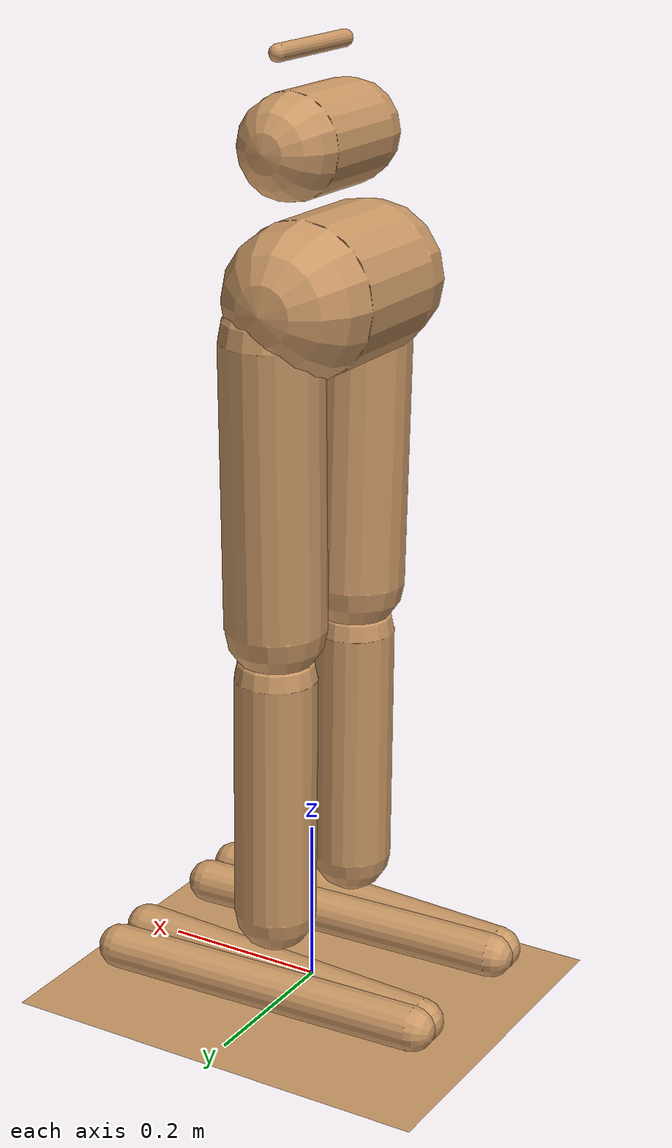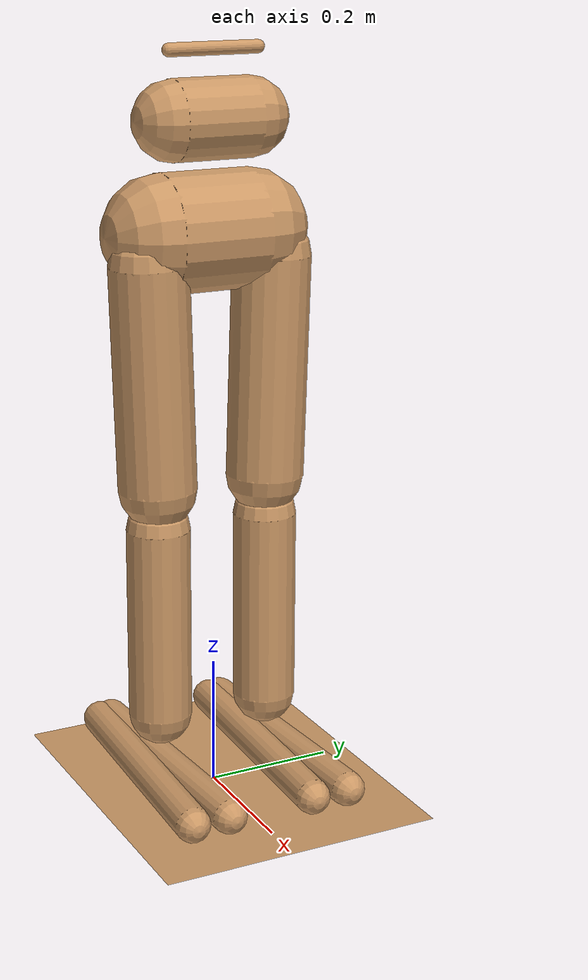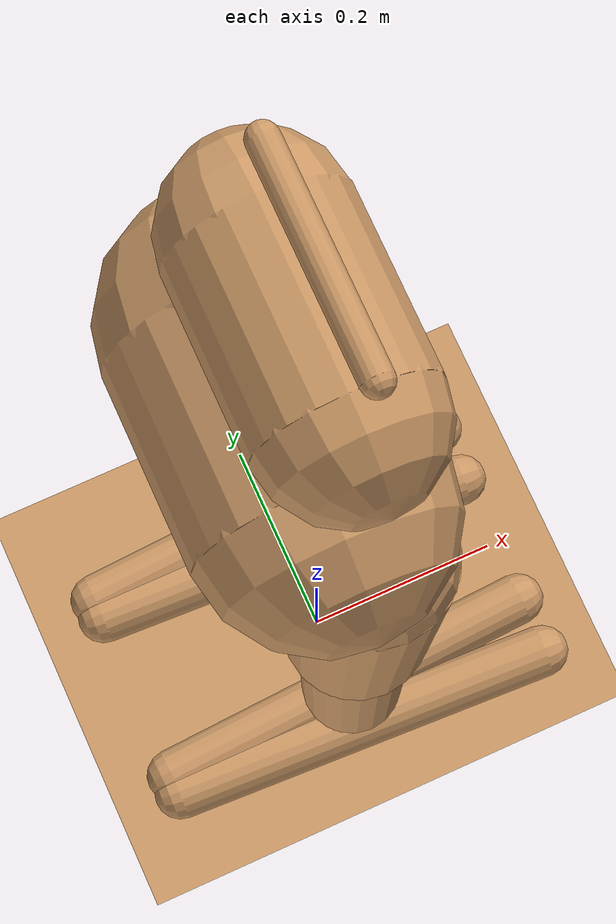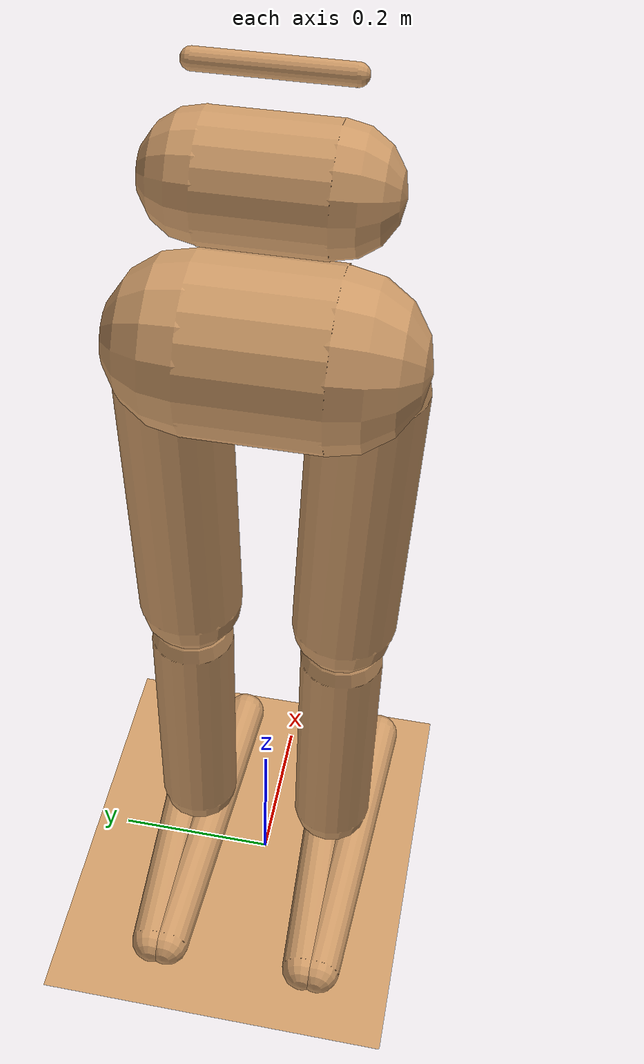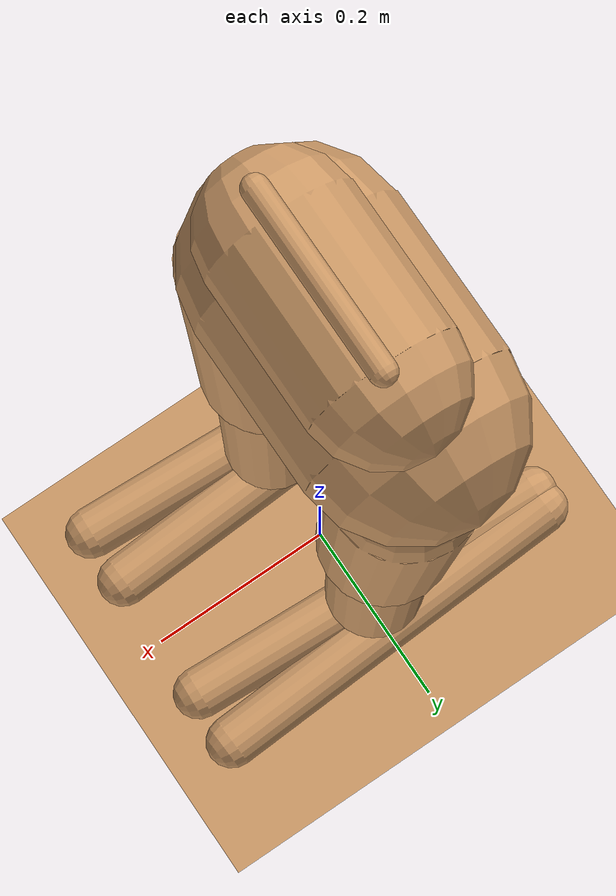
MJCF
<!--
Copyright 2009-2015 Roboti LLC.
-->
<mujoco model='humanoid (v1.31)'>
    <compiler inertiafromgeom='true' angle='degree'/>

    <default>
        <joint limited='true' damping='1' armature='0'  />
        <geom contype='1' conaffinity='1' condim='1' rgba='0.8 0.6 .4 1'
        	margin="0.001" solref=".02 1" solimp=".8 .8 .01" material="geom"/>
        <motor ctrlrange='-.4 .4' ctrllimited='true'/>
    </default>

    <option timestep='0.002' iterations="50" solver="PGS">
        <flag energy="enable"/>
    </option>

    <visual>
        <map fogstart="3" fogend="5" force="0.1"/>
        <quality shadowsize="2048"/>
    </visual>

    <asset>
        <texture type="skybox" builtin="gradient" width="100" height="100" rgb1=".4 .6 .8"
            rgb2="0 0 0"/>
        <texture name="texgeom" type="cube" builtin="flat" mark="cross" width="127" height="1278"
            rgb1="0.8 0.6 0.4" rgb2="0.8 0.6 0.4" markrgb="1 1 1" random="0.01"/>
        <texture name="texplane" type="2d" builtin="checker" rgb1=".2 .3 .4" rgb2=".1 0.15 0.2"
            width="100" height="100"/>

        <material name='MatPlane' reflectance='0.5' texture="texplane" texrepeat="1 1" texuniform="true"/>
        <material name='geom' texture="texgeom" texuniform="true"/>
    </asset>

    <worldbody>
        <geom name='floor' pos='0 0 0' size='10 10 0.125' type='plane' material="MatPlane" condim='3'/>

        <body name='torso' pos='0 0 1.14'>
            <light mode='trackcom' directional='false' diffuse='.8 .8 .8' specular='0.3 0.3 0.3' pos='0 0 4.0' dir='0 0 -1'/>

            <joint name='root' type='free' pos='0 0 0' limited='false' damping='0' armature='0' stiffness='0'/>
            <geom name='torso1' type='capsule' fromto='0 -.07 0 0 .07 0'  size='0.01' />
            <body name='lwaist' pos='-.01 0 -0.10' quat='1.000 0 -0.002 0' >
                <geom name='lwaist' type='capsule' fromto='0 -.06 0 0 .06 0'  size='0.06' />
                <joint name='abdomen_y' type='hinge' pos='0 0 0.065' axis='0 1 0' range='-75 30' damping='5' stiffness='10' armature='0.02' />
                <body name='pelvis' pos='0 0 -0.165' quat='1.000 0 -0.002 0' >
                    <geom name='butt' type='capsule' fromto='-.02 -.07 0 -.02 .07 0'  size='0.09' />
                    <body name='right_thigh' pos='0 -0.1 -0.04' >
                        <joint name='right_hip_x' type='hinge' pos='0 0 0' axis='1 0 0' range='-25 5'   damping='5' stiffness='10' armature='0.01' />
                        <joint name='right_hip_z' type='hinge' pos='0 0 0' axis='0 0 1' range='-60 35'  damping='5' stiffness='10' armature='0.01' />
                        <joint name='right_hip_y' type='hinge' pos='0 0 0' axis='0 1 0' range='-110 20' damping='5' stiffness='20' armature='0.0080' />
                        <geom name='right_thigh1' type='capsule' fromto='0 0 0 0 0.01 -.34'  size='0.06' />
                        <body name='right_shin' pos='0 0.01 -0.403' >
                            <joint name='right_knee' type='hinge' pos='0 0 .02' axis='0 -1 0' range='-160 160' armature='0.0060' />
                            <geom name='right_shin1' type='capsule' fromto='0 0 0 0 0 -.3'   size='0.049' />
                            <body name='right_foot' pos='0 0 -.39' >
                                <joint name='right_ankle_y' type='hinge' pos='0 0 0.08' axis='0 1 0'   range='-50 50' stiffness='4' armature='0.0008' />
                                <joint name='right_ankle_x' type='hinge' pos='0 0 0.04' axis='1 0 0.5' range='-50 50' stiffness='1'  armature='0.0006' />
                                <geom name='right_foot_cap1' type='capsule' fromto='-.2 -0.02 0 0.2 -0.04 0'  size='0.027' />
                                <geom name='right_foot_cap2' type='capsule' fromto='-.2 0 0 0.2  0.02 0'  size='0.027' />
                            </body>
                        </body>
                    </body>
                    <body name='left_thigh' pos='0 0.1 -0.04' >
                        <joint name='left_hip_x' type='hinge' pos='0 0 0' axis='-1 0 0' range='-25 5'  damping='5' stiffness='10' armature='0.01' />
                        <joint name='left_hip_z' type='hinge' pos='0 0 0' axis='0 0 -1' range='-60 35' damping='5' stiffness='10' armature='0.01' />
                        <joint name='left_hip_y' type='hinge' pos='0 0 0' axis='0 1 0' range='-120 20' damping='5' stiffness='20' armature='0.01' />
                        <geom name='left_thigh1' type='capsule' fromto='0 0 0 0 -0.01 -.34'  size='0.06' />
                        <body name='left_shin' pos='0 -0.01 -0.403' >
                            <joint name='left_knee' type='hinge' pos='0 0 .02' axis='0 -1 0' range='-160 160' stiffness='1' armature='0.0060' />
                            <geom name='left_shin1' type='capsule' fromto='0 0 0 0 0 -.3'   size='0.049' />
                            <body name='left_foot' pos='0 0 -.39' >
                                <joint name='left_ankle_y' type='hinge' pos='0 0 0.08' axis='0 1 0'   range='-50 50'  stiffness='4' armature='0.0008' />
                                <joint name='left_ankle_x' type='hinge' pos='0 0 0.04' axis='1 0 0.5' range='-50 50'  stiffness='1'  armature='0.0006' />
                                <geom name='left_foot_cap1' type='capsule' fromto='-.2 0.02 0 0.2 0.04 0'  size='0.027' />
                                <geom name='left_foot_cap2' type='capsule' fromto='-.2 0 0 0.2  -0.02 0'  size='0.027' />
                            </body>
                        </body>
                    </body>
                </body>
            </body>
        </body>
    </worldbody>

    <keyframe>
        <key qpos='0 0 1.12 1 0 0 0 0 0 0 0.281027 0 0 0 0 0 -0.176166 0 0 0'/>
    </keyframe>

    <actuator>
        <motor name='abdomen_y'       gear='1' ctrlrange="-200 200" joint='abdomen_y' />
        <motor name='right_hip_x'     gear='1' ctrlrange="-200 200" joint='right_hip_x' />
        <motor name='right_hip_z'     gear='1' ctrlrange="-200 200" joint='right_hip_z' />
        <motor name='right_hip_y'     gear='1' ctrlrange="-600 600" joint='right_hip_y' />
        <motor name='right_knee'      gear='1' ctrlrange="-400 400" joint='right_knee' />
        <motor name='right_ankle_x'   gear='1' ctrlrange="-100 100" joint='right_ankle_x' />
        <motor name='right_ankle_y'   gear='1' ctrlrange="-100 100" joint='right_ankle_y' />
        <motor name='left_hip_x'      gear='1' ctrlrange="-200 200" joint='left_hip_x' />
        <motor name='left_hip_z'      gear='1' ctrlrange="-200 200" joint='left_hip_z' />
        <motor name='left_hip_y'      gear='1' ctrlrange="-600 600" joint='left_hip_y' />
        <motor name='left_knee'       gear='1' ctrlrange="-400 400" joint='left_knee' />
        <motor name='left_ankle_x'    gear='1' ctrlrange="-100 100" joint='left_ankle_x' />
        <motor name='left_ankle_y'    gear='1' ctrlrange="-100 100" joint='left_ankle_y' />
    </actuator>

</mujoco>
